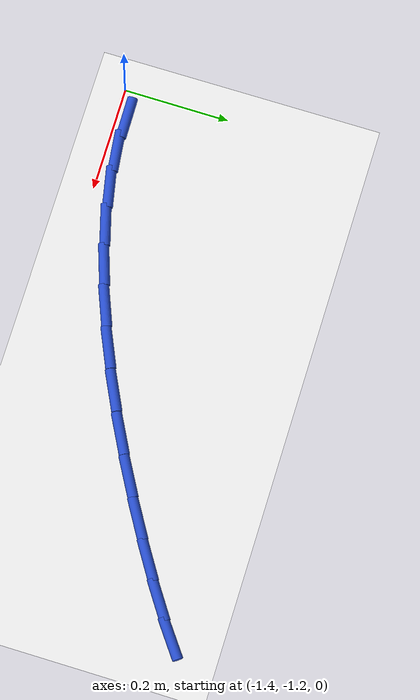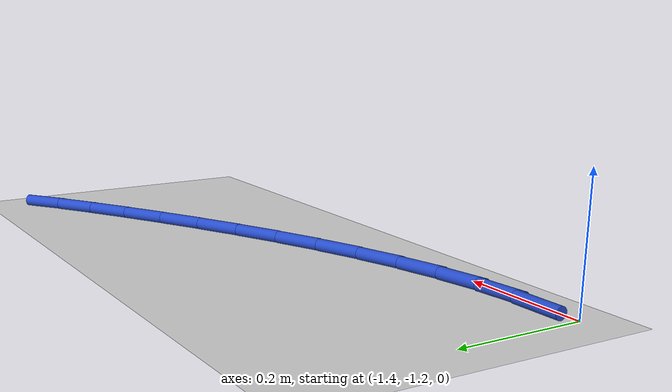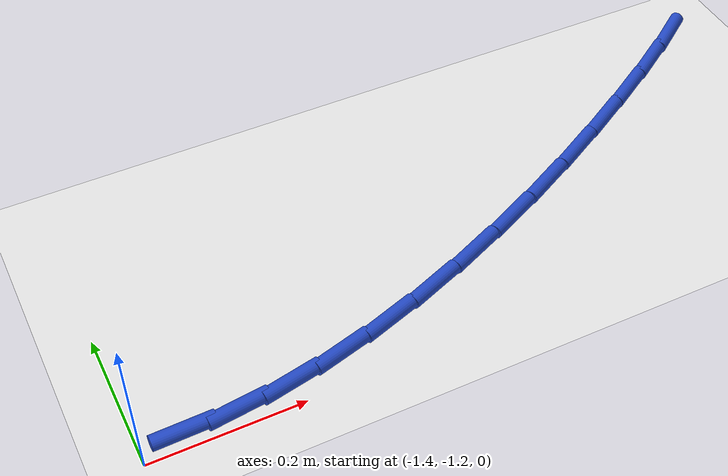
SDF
<sdf version="1.6">
 <world name="default">
  <model name="ground_plane">
   <static>1</static>
   <link name="link">
    <collision name="collision">
     <geometry><plane><normal>0 0 1</normal><size>100 100</size></plane></geometry>
     <surface><friction><ode><mu>100</mu><mu2>50</mu2></ode></friction></surface>
    </collision>
    <visual name="visual">
     <cast_shadows>0</cast_shadows>
     <geometry><plane><normal>0 0 1</normal><size>100 100</size></plane></geometry>
     <material>
      <script><uri>file://media/materials/scripts/gazebo.material</uri><name>Gazebo/WhiteGlow</name></script>
     </material>
    </visual>
   </link>
  </model>
  <model name="line">
   <link name="link_83">
    <pose>-1.3457549582598256 -1.1807241630936254 0.01 0 1.57 0.018602878963402455</pose>
    <collision name="collision">
     <geometry><cylinder><radius>0.01</radius><length>0.08</length></cylinder></geometry>
    </collision>
    <visual name="visual">
     <material>
      <script><name>Gazebo/Blue</name><uri>file://media/materials/scripts/gazebo.material</uri></script>
     </material>
     <geometry><cylinder><radius>0.01</radius><length>0.08</length></cylinder></geometry>
    </visual>
   </link>
   <link name="link_84">
    <pose>-1.2784123921039994 -1.1794712529526803 0.01 0 1.57 0.11893760970173031</pose>
    <collision name="collision">
     <geometry><cylinder><radius>0.01</radius><length>0.08</length></cylinder></geometry>
    </collision>
    <visual name="visual">
     <material>
      <script><name>Gazebo/Blue</name><uri>file://media/materials/scripts/gazebo.material</uri></script>
     </material>
     <geometry><cylinder><radius>0.01</radius><length>0.08</length></cylinder></geometry>
    </visual>
   </link>
   <link name="link_85">
    <pose>-1.208573037073531 -1.1711253356247358 0.01 0 1.57 0.20223752030593778</pose>
    <collision name="collision">
     <geometry><cylinder><radius>0.01</radius><length>0.08</length></cylinder></geometry>
    </collision>
    <visual name="visual">
     <material>
      <script><name>Gazebo/Blue</name><uri>file://media/materials/scripts/gazebo.material</uri></script>
     </material>
     <geometry><cylinder><radius>0.01</radius><length>0.08</length></cylinder></geometry>
    </visual>
   </link>
   <link name="link_86">
    <pose>-1.1368146393618124 -1.156411953608844 0.01 0 1.57 0.27157962609215935</pose>
    <collision name="collision">
     <geometry><cylinder><radius>0.01</radius><length>0.08</length></cylinder></geometry>
    </collision>
    <visual name="visual">
     <material>
      <script><name>Gazebo/Blue</name><uri>file://media/materials/scripts/gazebo.material</uri></script>
     </material>
     <geometry><cylinder><radius>0.01</radius><length>0.08</length></cylinder></geometry>
    </visual>
   </link>
   <link name="link_87">
    <pose>-1.0637149451622325 -1.1360566494040585 0.01 0 1.57 0.32965687909194286</pose>
    <collision name="collision">
     <geometry><cylinder><radius>0.01</radius><length>0.08</length></cylinder></geometry>
    </collision>
    <visual name="visual">
     <material>
      <script><name>Gazebo/Blue</name><uri>file://media/materials/scripts/gazebo.material</uri></script>
     </material>
     <geometry><cylinder><radius>0.01</radius><length>0.08</length></cylinder></geometry>
    </visual>
   </link>
   <link name="link_88">
    <pose>-0.9898517006681837 -1.1107849655094326 0.01 0 1.57 0.3786761225181315</pose>
    <collision name="collision">
     <geometry><cylinder><radius>0.01</radius><length>0.08</length></cylinder></geometry>
    </collision>
    <visual name="visual">
     <material>
      <script><name>Gazebo/Blue</name><uri>file://media/materials/scripts/gazebo.material</uri></script>
     </material>
     <geometry><cylinder><radius>0.01</radius><length>0.08</length></cylinder></geometry>
    </visual>
   </link>
   <link name="link_89">
    <pose>-0.9158026520730543 -1.0813224444240181 0.01 0 1.57 0.4203912797854404</pose>
    <collision name="collision">
     <geometry><cylinder><radius>0.01</radius><length>0.08</length></cylinder></geometry>
    </collision>
    <visual name="visual">
     <material>
      <script><name>Gazebo/Blue</name><uri>file://media/materials/scripts/gazebo.material</uri></script>
     </material>
     <geometry><cylinder><radius>0.01</radius><length>0.08</length></cylinder></geometry>
    </visual>
   </link>
   <link name="link_90">
    <pose>-0.8421455455702369 -1.0483946286468697 0.01 0 1.57 0.45617832502957445</pose>
    <collision name="collision">
     <geometry><cylinder><radius>0.01</radius><length>0.08</length></cylinder></geometry>
    </collision>
    <visual name="visual">
     <material>
      <script><name>Gazebo/Blue</name><uri>file://media/materials/scripts/gazebo.material</uri></script>
     </material>
     <geometry><cylinder><radius>0.01</radius><length>0.08</length></cylinder></geometry>
    </visual>
   </link>
   <link name="link_91">
    <pose>-0.7694581273531202 -1.0127270606770395 0.01 0 1.57 0.487112575871494</pose>
    <collision name="collision">
     <geometry><cylinder><radius>0.01</radius><length>0.08</length></cylinder></geometry>
    </collision>
    <visual name="visual">
     <material>
      <script><name>Gazebo/Blue</name><uri>file://media/materials/scripts/gazebo.material</uri></script>
     </material>
     <geometry><cylinder><radius>0.01</radius><length>0.08</length></cylinder></geometry>
    </visual>
   </link>
   <link name="link_92">
    <pose>-0.698318143615096 -0.9750452830135811 0.01 0 1.57 0.5140347771045177</pose>
    <collision name="collision">
     <geometry><cylinder><radius>0.01</radius><length>0.08</length></cylinder></geometry>
    </collision>
    <visual name="visual">
     <material>
      <script><name>Gazebo/Blue</name><uri>file://media/materials/scripts/gazebo.material</uri></script>
     </material>
     <geometry><cylinder><radius>0.01</radius><length>0.08</length></cylinder></geometry>
    </visual>
   </link>
   <link name="link_93">
    <pose>-0.6293033405495537 -0.9360748381555469 0.01 0 1.57 0.5376644621199367</pose>
    <collision name="collision">
     <geometry><cylinder><radius>0.01</radius><length>0.08</length></cylinder></geometry>
    </collision>
    <visual name="visual">
     <material>
      <script><name>Gazebo/Blue</name><uri>file://media/materials/scripts/gazebo.material</uri></script>
     </material>
     <geometry><cylinder><radius>0.01</radius><length>0.08</length></cylinder></geometry>
    </visual>
   </link>
   <link name="link_94">
    <pose>-0.5629885547237348 -0.8965340289153535 0.01 0 1.57 0.5622817232082674</pose>
    <collision name="collision">
     <geometry><cylinder><radius>0.01</radius><length>0.08</length></cylinder></geometry>
    </collision>
    <visual name="visual">
     <material>
      <script><name>Gazebo/Blue</name><uri>file://media/materials/scripts/gazebo.material</uri></script>
     </material>
     <geometry><cylinder><radius>0.01</radius><length>0.08</length></cylinder></geometry>
    </visual>
   </link>
   <link name="link_95">
    <pose>-0.49977066707069945 -0.8566983716578817 0.01 0 1.57 0.5942635996128087</pose>
    <collision name="collision">
     <geometry><cylinder><radius>0.01</radius><length>0.08</length></cylinder></geometry>
    </collision>
    <visual name="visual">
     <material>
      <script><name>Gazebo/Blue</name><uri>file://media/materials/scripts/gazebo.material</uri></script>
     </material>
     <geometry><cylinder><radius>0.01</radius><length>0.08</length></cylinder></geometry>
    </visual>
   </link>
   <link name="link_96">
    <pose>-0.43976876716727203 -0.8161521866060483 0.01 0 1.57 0.6345709513848614</pose>
    <collision name="collision">
     <geometry><cylinder><radius>0.01</radius><length>0.08</length></cylinder></geometry>
    </collision>
    <visual name="visual">
     <material>
      <script><name>Gazebo/Blue</name><uri>file://media/materials/scripts/gazebo.material</uri></script>
     </material>
     <geometry><cylinder><radius>0.01</radius><length>0.08</length></cylinder></geometry>
    </visual>
   </link>
  </model>
 </world>
</sdf>
